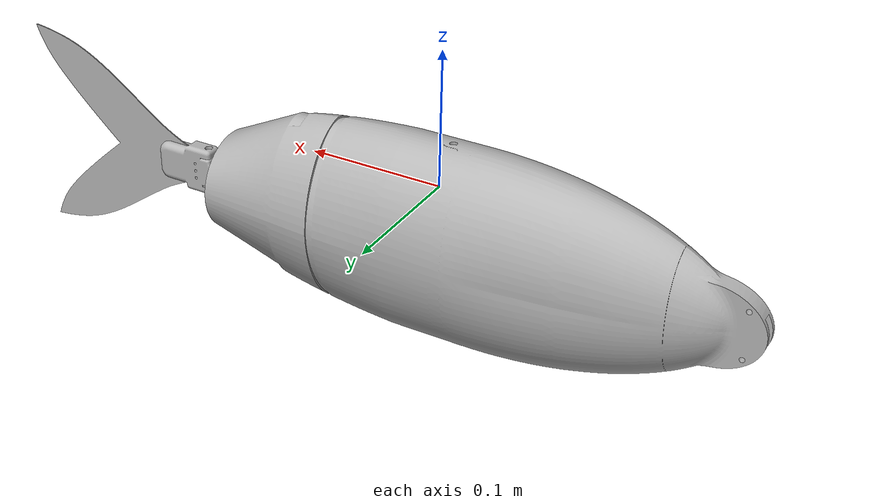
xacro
<?xml version="1.0" ?>
<robot name="RL_SIM_MODE_3" xmlns:xacro="http://www.ros.org/wiki/xacro">

<xacro:include filename="$(find RL_SIM_MODE_3_description)/urdf/materials.xacro" />
<xacro:include filename="$(find RL_SIM_MODE_3_description)/urdf/RL_SIM_MODE_3.trans" />
<xacro:include filename="$(find RL_SIM_MODE_3_description)/urdf/RL_SIM_MODE_3.gazebo" />
<link name="base_link">
  <inertial>
    <origin xyz="0.012283574234814425 7.635010567865243e-05 -0.04049516665701773" rpy="0 0 0"/>
    <mass value="2.434915631163485"/>
    <inertia ixx="0.005171" iyy="0.031671" izz="0.029391" ixy="1.7e-05" iyz="-1e-06" ixz="-0.000768"/>
  </inertial>
  <visual>
    <origin xyz="0 0 0" rpy="0 0 0"/>
    <geometry>
      <mesh filename="package://RL_SIM_MODE_3_description/meshes/base_link.stl" scale="0.001 0.001 0.001"/>
    </geometry>
    <material name="silver"/>
  </visual>
  <collision>
    <origin xyz="0 0 0" rpy="0 0 0"/>
    <geometry>
      <mesh filename="package://RL_SIM_MODE_3_description/meshes/base_link.stl" scale="0.001 0.001 0.001"/>
    </geometry>
  </collision>
</link>

<link name="tail_link_1_1">
  <inertial>
    <origin xyz="0.051106838075044514 0.0012841063693463932 -0.005348739034502989" rpy="0 0 0"/>
    <mass value="0.06984963077475552"/>
    <inertia ixx="7e-06" iyy="5.6e-05" izz="5.4e-05" ixy="5e-06" iyz="-0.0" ixz="0.0"/>
  </inertial>
  <visual>
    <origin xyz="-0.144817 0.0 0.03565" rpy="0 0 0"/>
    <geometry>
      <mesh filename="package://RL_SIM_MODE_3_description/meshes/tail_link_1_1.stl" scale="0.001 0.001 0.001"/>
    </geometry>
    <material name="silver"/>
  </visual>
  <collision>
    <origin xyz="-0.144817 0.0 0.03565" rpy="0 0 0"/>
    <geometry>
      <mesh filename="package://RL_SIM_MODE_3_description/meshes/tail_link_1_1.stl" scale="0.001 0.001 0.001"/>
    </geometry>
  </collision>
</link>

<link name="fin_1">
  <inertial>
    <origin xyz="0.0772699392477895 -0.0004000000000000308 0.006001005286632999" rpy="0 0 0"/>
    <mass value="0.010521240247747048"/>
    <inertia ixx="1.8e-05" iyy="3.1e-05" izz="1.3e-05" ixy="-0.0" iyz="-0.0" ixz="-0.0"/>
  </inertial>
  <visual>
    <origin xyz="-0.201817 -0.00075 0.047025" rpy="0 0 0"/>
    <geometry>
      <mesh filename="package://RL_SIM_MODE_3_description/meshes/fin_1.stl" scale="0.001 0.001 0.001"/>
    </geometry>
    <material name="silver"/>
  </visual>
  <collision>
    <origin xyz="-0.201817 -0.00075 0.047025" rpy="0 0 0"/>
    <geometry>
      <mesh filename="package://RL_SIM_MODE_3_description/meshes/fin_1.stl" scale="0.001 0.001 0.001"/>
    </geometry>
  </collision>
</link>

<joint name="È¸Àü 1" type="revolute">
  <origin xyz="0.144817 0.0 -0.03565" rpy="0 0 0"/>
  <parent link="base_link"/>
  <child link="tail_link_1_1"/>
  <axis xyz="0.0 0.0 -1.0"/>
  <limit upper="0.349066" lower="-0.349066" effort="100" velocity="100"/>
</joint>

<joint name="°­Ã¼ 4" type="fixed">
  <origin xyz="0.057 0.00075 -0.011375" rpy="0 0 0"/>
  <parent link="tail_link_1_1"/>
  <child link="fin_1"/>
</joint>

</robot>

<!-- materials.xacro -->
<robot name="RL_SIM_MODE_3" xmlns:xacro="http://www.ros.org/wiki/xacro" >

<material name="silver">
  <color rgba="0.700 0.700 0.700 1.000"/>
</material>

</robot>

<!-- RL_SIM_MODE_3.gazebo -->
<robot name="RL_SIM_MODE_3" xmlns:xacro="http://www.ros.org/wiki/xacro" >

<xacro:property name="body_color" value="Gazebo/Silver" />

<gazebo>
  <plugin name="control" filename="libgazebo_ros_control.so"/>
</gazebo>
<gazebo reference="base_link">
  <material>${body_color}</material>
  <mu1>0.2</mu1>
  <mu2>0.2</mu2>
  <selfCollide>true</selfCollide>
  <gravity>true</gravity>
</gazebo>

<gazebo reference="tail_link_1_1">
  <material>${body_color}</material>
  <mu1>0.2</mu1>
  <mu2>0.2</mu2>
  <selfCollide>true</selfCollide>
</gazebo>

<gazebo reference="fin_1">
  <material>${body_color}</material>
  <mu1>0.2</mu1>
  <mu2>0.2</mu2>
  <selfCollide>true</selfCollide>
</gazebo>

</robot>
